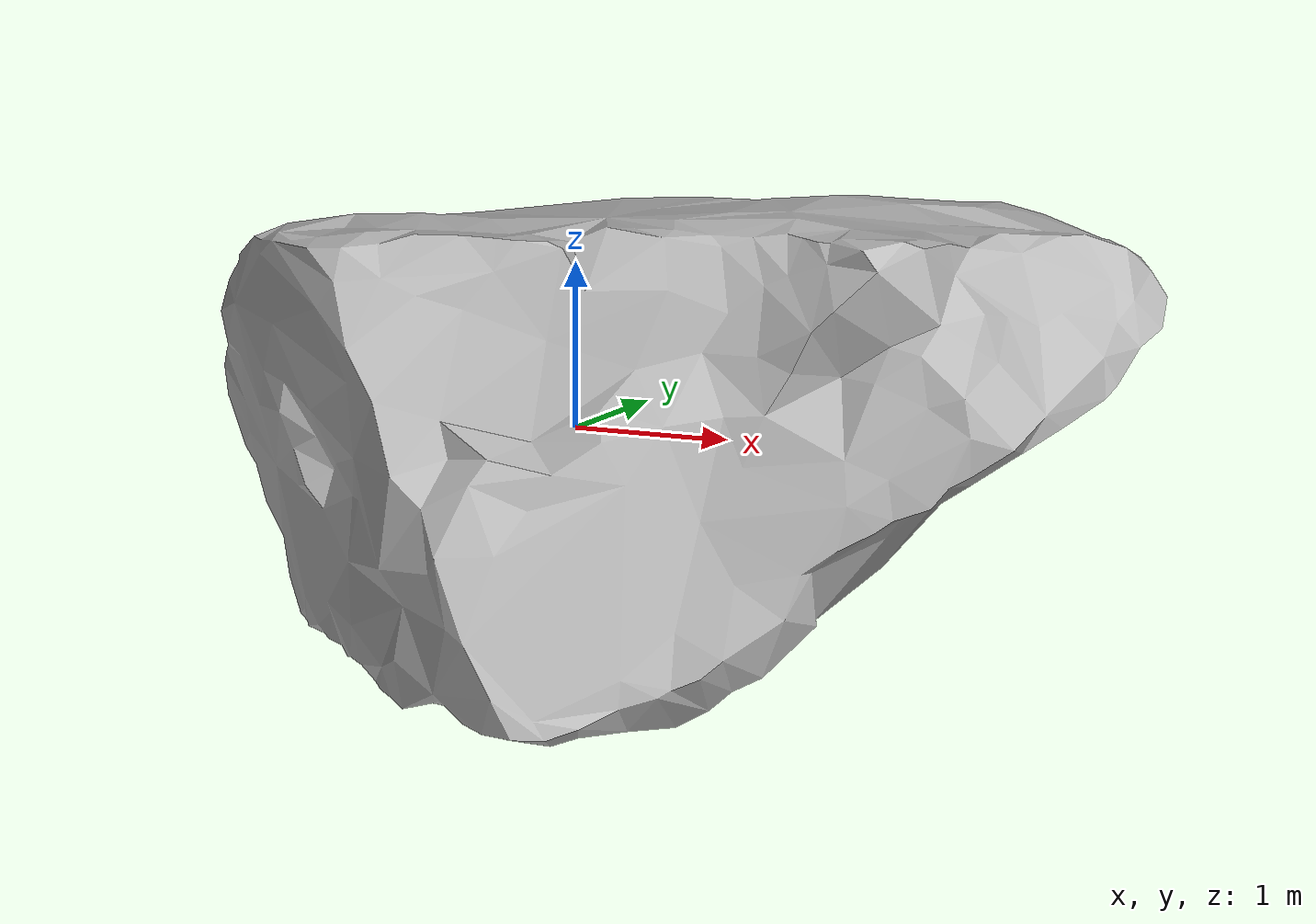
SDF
<?xml version="1.0" ?>
<sdf version="1.6">
  <model name="smars_rock_4">
    <static>true</static>
    <link name="link">
      <collision name="collision">
        <pose>0 0 0 0 0 0</pose>
        <geometry>
          <mesh>
            <scale>1 1 1</scale>
            <uri>model://smars_rock_4/rock4.obj</uri>
          </mesh>
        </geometry>
      </collision>
      <visual name="visual">
        <pose>0 0 0 0 0 0</pose>
        <geometry>
          <mesh>
            <scale>1 1 1</scale>
            <uri>model://smars_rock_4/rock4.obj</uri>
          </mesh>
        </geometry>
      </visual>
    </link>
  </model>
</sdf>
